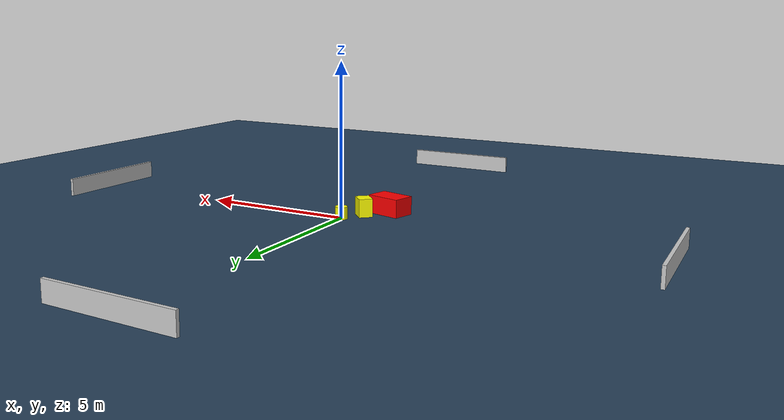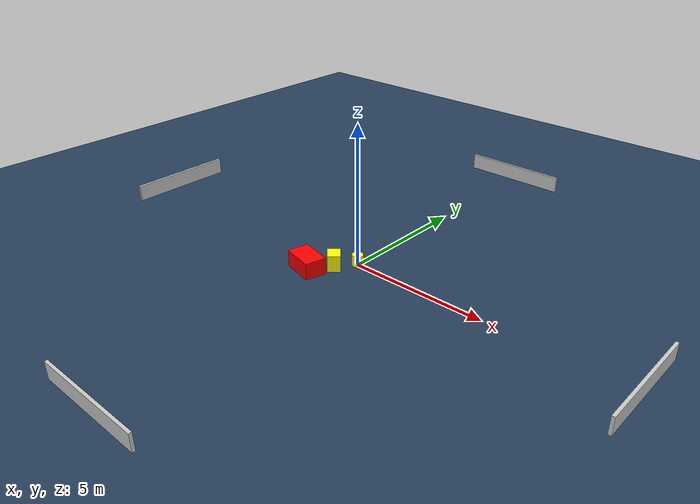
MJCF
<?xml version="1.0" ?>
<mujoco model="generated_environment">
  <option timestep="0.01" integrator="RK4" cone="elliptic"/>
  <default>
    <geom density="1"/>
  </default>
  <asset>
    <texture builtin="gradient" height="3072" name="skybox" rgb1="0.3 0.5 0.7" rgb2="0 0 0" type="skybox" width="512"/>
    <texture builtin="checker" height="300" name="groundplane" rgb1="0.2 0.3 0.4" rgb2="0.1 0.2 0.3" type="2d" width="300"/>
    <material name="groundplane" reflectance="0.2" texrepeat="5 5" texture="groundplane"/>
  </asset>
  <worldbody>
    <light dir="0 0 -1" directional="true" pos="0 0 1.5"/>
    <geom condim="3" friction="0.5 0.005 0.001" material="groundplane" name="floor" pos="0 0 0" size="0 0 0.05" type="plane"/>
    <body name="walls">
      <geom name="wall_1" condim="4" pos="-10.0 0.0 0.3" rgba="0.800000011920929 0.800000011920929 0.800000011920929 1.0" size="0.05 2.0 0.3" type="box"/>
      <geom name="wall_2" condim="4" pos="10.0 0.0 0.3" rgba="0.800000011920929 0.800000011920929 0.800000011920929 1.0" size="0.05 2.0 0.3" type="box"/>
      <geom name="wall_3" condim="4" pos="0.0 -10.0 0.3" rgba="0.800000011920929 0.800000011920929 0.800000011920929 1.0" size="2.0 0.05 0.3" type="box"/>
      <geom name="wall_4" condim="4" pos="0.0 10.0 0.3" rgba="0.800000011920929 0.800000011920929 0.800000011920929 1.0" size="2.0 0.05 0.3" type="box"/>
    </body>
    <body name="robot">
      <joint name="joint_x" type="slide" pos="0 0 0" axis="1 0 0"/>
      <joint name="joint_y" type="slide" pos="0 0 0" axis="0 1 0"/>
      <geom name="robot" type="cylinder" pos="0.0 0.0 0.2" size="0.2 0.2 0.0" mass="5.0" friction="1.0 0.005 0.0001" condim="4" rgba="1.0 1.0 0.0 1.0"/>
    </body>
    <body name="obstacle_1_movable">
      <geom name="obstacle_1_movable" condim="4" pos="-0.4350902018914624 -0.7026199954920698 0.3" euler="0 0 313.2497635227127" friction="0.0 0.005 0.001" rgba="1.0 1.0 0.0 1.0" size="0.2677921901740854 0.2250183546615094 0.3" type="box" mass="0.1"/>
      <joint type="free"/>
    </body>
    <body name="obstacle_2_static">
      <geom name="obstacle_2_static" condim="4" pos="-1.0348334102250623 -1.3848900155158335 0.3" euler="0 0 166.0116487471481" friction="0.0 0.005 0.001" rgba="1.0 0.0 0.0 1.0" size="0.5829405999897989 0.38376240063101 0.3" type="box"/>
    </body>
  </worldbody>
  <actuator>
    <motor name="actuator_x" joint="joint_x" gear="1" ctrlrange="-1 1"/>
    <motor name="actuator_y" joint="joint_y" gear="1" ctrlrange="-1 1"/>
  </actuator>
</mujoco>
